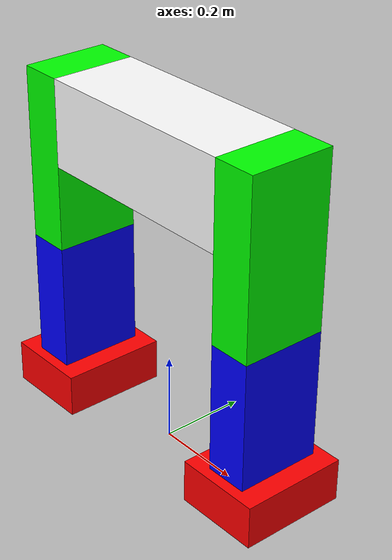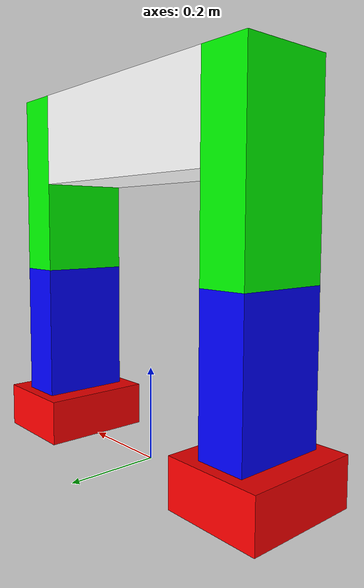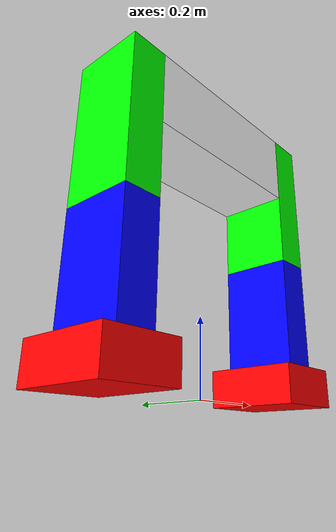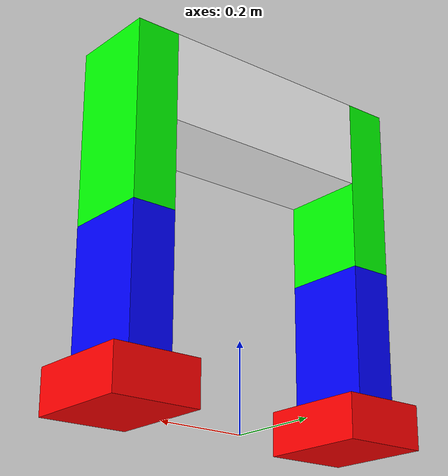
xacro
<?xml version="1.0"?>
<robot xmlns:xacro="http://www.ros.org/wiki/xacro" name="biped_robot">

    <material name="red">
        <color rgba="1.0 0.0 0.0 1.0"/>
    </material>

    <material name="blue">
        <color rgba="0.0 0.0 1.0 1.0"/>
    </material>

    <material name="green">
        <color rgba="0.0 1.0 0.0 1.0"/>
    </material>

    <material name="black">
        <color rgba="0.0 0.0 0.0 1.0"/>
    </material>

    <material name="white">
        <color rgba="1 1 1 1"/>
    </material>

    <xacro:macro name="iner" params="m o_x o_y o_z w h d">
        <inertial>
            <origin xyz="${o_x} ${o_y} ${o_z}" rpy="0.0 0.0 0.0"/>
            <mass value="${m}"/>
            <inertia ixx="${(m/12) * ((h*h) + (d*d))}" ixy="0.0" ixz="0.0"
                     iyy="${(m/12) * ((w*w) + (d*d))}" iyz="0.0"
                     izz="${(m/12) * ((w*w) + (h*h))}"/>
        </inertial>

    </xacro:macro>

    <link name="base_footprint"/>

    <joint name="$base_joint" type="fixed">
        <parent link="base_footprint"/>
        <child link="base_link"/>
        <origin xyz="0.0 0.0 0.7" rpy="0.0 0.0 0.0"/>
    </joint>

    <xacro:property name="width" value="0.5"/>
    <xacro:property name="height" value="0.2"/>
    <xacro:property name="depth" value="0.2"/>
    <link name="base_link">
        <visual>
            <geometry>
                <box size="${width} ${height} ${depth}"/>
            </geometry>
            <material name="white"/>
        </visual>
        <collision>
            <geometry>
                <box size="${width} ${height} ${depth}"/>
            </geometry>
        </collision>
        <xacro:iner m="2" o_x="0" o_y="0" o_z="0" w="${width}" h="${height}" d="${depth}"/>
    </link>

    <gazebo reference="base_link">
        <material>Gazebo/White</material>
    </gazebo>

    <xacro:macro name="leg" params="prefix y_reflect">
        <!--골반과 허벅지 조인트 연결-->
        <joint name="${prefix}_hip_joint" type="revolute">
            <parent link="base_link"/>
            <child link="${prefix}_thigh_link"/>
            <origin xyz="${0.25 * y_reflect} 0.0 0" rpy="0.0 0.0 1.57075"/>
            <axis xyz="0 1.0 0.0"/>
            <limit lower="-1.2" upper="1.2" effort="100.0" velocity="3.14"/>
        </joint>

        <link name="${prefix}_thigh_link">
            <visual name="${prefix}_thigh_link">
                <geometry>
                    <box size="0.2 0.1 0.4"/>
                </geometry>
                <material name="green"/>
                <origin xyz="0.0 ${y_reflect * -0.05} -0.1"/>
            </visual>
            <collision>
                <geometry>
                    <box size="0.2 0.1 0.4"/>
                </geometry>
                <origin xyz="${y_reflect * 0.05} 0.0 -0.1"/>
            </collision>
            <xacro:iner m="1" o_x="0.0" o_y="${y_reflect * -0.05}" o_z="-0.1"
                          w="0.2" h="0.1" d="0.4"/>
        </link>
        <gazebo reference = "${prefix}_thigh_link">
            <material>Gazebo/Green</material>
        </gazebo>

        <joint name="${prefix}_calf_joint" type="revolute">
            <parent link="${prefix}_thigh_link"/>
            <child link="${prefix}_calf_link"/>
            <origin xyz="0.0 ${y_reflect * -0.05} -0.3" rpy="0.0 0.0 0.0"/>
            <axis xyz="0.0 1.0 0.0"/>
            <limit lower="-1.5" upper="0.0" effort="100.0" velocity="3.14"/>
        </joint>

        <link name="${prefix}_calf_link">
            <visual>
                <geometry>
                    <box size="0.2 0.1 0.3"/>
                </geometry>
                <material name="blue"/>
                <origin xyz="0.0 0.0 -0.15"/>
            </visual>
            <collision>
                <geometry>
                    <box size="0.2 0.1 0.3"/>
                </geometry>
                <origin xyz="0.0 0.0 -0.15"/>
            </collision>
            <xacro:iner m="0.6" o_x="0" o_y="0.0" o_z="-0.15"
                          w="0.2" h="0.1" d="0.3"/>
        </link>

        <gazebo reference = "${prefix}_calf_link">
            <material>Gazebo/Blue</material>
        </gazebo>

        <joint name="${prefix}_foot_joint" type="revolute">
            <parent link="${prefix}_calf_link"/>
            <child link="${prefix}_foot_link"/>
            <origin xyz="0.0 0.0 -0.3" rpy="0.0 0.0 0.0"/>
            <axis xyz="0.0 1.0 0.0"/>
            <limit lower="-1.5" upper="0.0" effort="100.0" velocity="3.14"/>
        </joint>

        <link name="${prefix}_foot_link">
            <visual>
                <geometry>
                    <box size="0.25 0.2 0.1"/>
                </geometry>
                <material name="red"/>
                <origin xyz="0.0 0.0 -0.05" rpy="0.0 0.0 0.0"/>
            </visual>
            <collision>
                <geometry>
                    <box size="0.25 0.2 0.1"/>
                </geometry>
                <origin xyz="0.0 0.0 -0.05"/>
            </collision>
            <xacro:iner m="0.2" o_x="0.0" o_y="0.0" o_z="-0.05"
                          w="0.25" h="0.2" d="0.1"/>
        </link>

        <gazebo reference = "${prefix}_foot_link">
            <material>Gazebo/Red</material>
        </gazebo>

        <ros2_control name="${prefix}_leg_control" type="system">
            <hardware>
                <plugin>gazebo_ros2_control/GazeboSystem</plugin>
            </hardware>

            <!-- 앞서 만든 물리적 조인트의 이름을 그대로 참조 -->
            <joint name="${prefix}_hip_joint">
                <command_interface name="position">  <!-- 빳빳하게 세우려면 position 추천 -->
                    <param name="min">-1.2</param>
                    <param name="max">1.2</param>
                </command_interface>
                <state_interface name="position">
                    <param name="initial_value">0.0</param> <!-- 시작할 때 기본 자세 (0도) -->
                </state_interface>
                <state_interface name="velocity"/>
                <state_interface name="effort"/>
            </joint>

            <joint name="${prefix}_calf_joint">
                <command_interface name="position">  <!-- 빳빳하게 세우려면 position 추천 -->
                    <param name="min">-1.2</param>
                    <param name="max">1.2</param>
                </command_interface>
                <state_interface name="position">
                    <param name="initial_value">0.0</param> <!-- 시작할 때 기본 자세 (0도) -->
                </state_interface>
                <state_interface name="velocity"/>
                <state_interface name="effort"/>
            </joint>

            <joint name="${prefix}_foot_joint">
                <command_interface name="position">  <!-- 빳빳하게 세우려면 position 추천 -->
                    <param name="min">-1.2</param>
                    <param name="max">1.2</param>
                </command_interface>
                <state_interface name="position">
                    <param name="initial_value">0.0</param> <!-- 시작할 때 기본 자세 (0도) -->
                </state_interface>
                <state_interface name="velocity"/>
                <state_interface name="effort"/>
            </joint>
            <!-- 여기에 calf_joint, foot_joint도 같은 방식으로 추가 -->

        </ros2_control>

    </xacro:macro>

    <xacro:leg prefix="left" y_reflect="1"/>
    <xacro:leg prefix="right" y_reflect="-1"/>

</robot>
